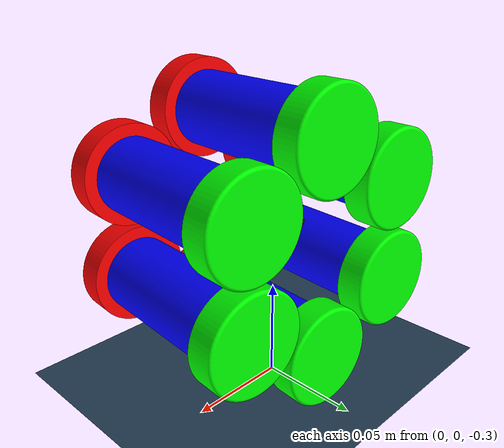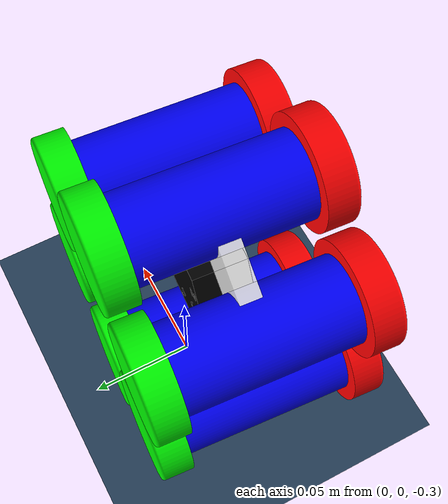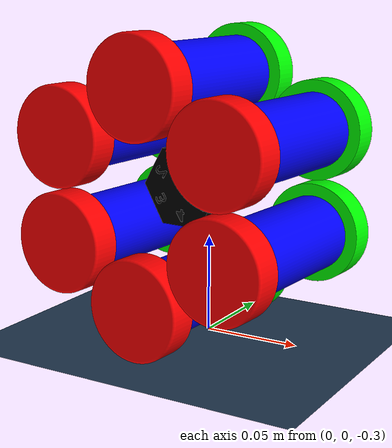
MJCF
<mujoco model="scene">
    <option timestep="0.001" solver="Newton" iterations="100" tolerance="1e-10"/>

    <include file="robot.xml" />

    <visual>
        <headlight diffuse="0.6 0.6 0.6" ambient="0.3 0.3 0.3" specular="0 0 0" />
        <rgba haze="0.15 0.25 0.35 1" />
        <global azimuth="160" elevation="-20" />
    </visual>

    <asset>
        <texture type="skybox" builtin="gradient" rgb1="0.3 0.5 0.7" rgb2="0 0 0" width="512"
            height="3072" />
        <texture type="2d" name="groundplane" builtin="checker" mark="edge" rgb1="0.2 0.3 0.4"
            rgb2="0.1 0.2 0.3"
            markrgb="0.8 0.8 0.8" width="300" height="300" />
        <material name="groundplane" texture="groundplane" texuniform="true" texrepeat="5 5"
            reflectance="0.2" />
    </asset>

    <worldbody>
        <light pos="0 0 3.5" dir="0 0 -0.3" directional="true" />
        <geom name="floor" size="0 0 0.05" pos="0 0 -0.3" type="plane" material="groundplane"/>
        <camera name="track_cam" mode="trackcom" target="control" pos="0 -2 1" />
    </worldbody>

</mujoco>

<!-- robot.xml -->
<!-- Generated using onshape-to-robot -->
<!-- Onshape https://cad.onshape.com/documents/1211bac3cb73c606e0df4462/w/b4b802ed1facbeb12b844dd4/e/452889f0b3bd3a04c0a0f503 -->
<mujoco model="roller">
  <compiler angle="radian" meshdir="assets" autolimits="true"/>
  <default>
    <default class="roller">
      <joint frictionloss="0.01" armature="0.005"/>
      <default class="visual">
        <geom type="mesh" contype="0" conaffinity="0" group="2"/>
      </default>
      <default class="collision">
        <geom group="3"/>
      </default>
    </default>
  </default>
  <worldbody>
    <!-- Link control -->
    <body name="control" pos="0 0 -0.22" euler="0 0.0 1.5" childclass="roller">
      <freejoint name="control_freejoint"/>
      <inertial pos="-0.0127 -5.50107e-05 -5.66234e-05" mass="0.091974" fullinertia="0.000228369 0.00011488 0.00011488 -6.9492e-21 1.08115e-39 -9.85277e-37"/>

            <site group="3" name="control" pos="0 0 0" quat="1 0 0 0"/>

      <!-- Part control -->
      <geom type="mesh" class="visual" pos="-0.0127 -5.50107e-05 -5.66234e-05" quat="1 0 0 0" mesh="control" material="control_material"/>
      <geom type="mesh" class="collision" pos="-0.0127 -5.50107e-05 -5.66234e-05" quat="1 0 0 0" mesh="control" material="control_material"/>
      <!-- Part suspension_joint -->
      <geom type="mesh" class="visual" pos="-0.0127 -5.50107e-05 -5.66234e-05" quat="1 -0 1.11022e-16 -0" mesh="suspension_joint" material="suspension_joint_material"/>
      <geom type="mesh" class="collision" pos="-0.0127 -5.50107e-05 -5.66234e-05" quat="1 -0 1.11022e-16 -0" mesh="suspension_joint" material="suspension_joint_material"/>
      <!-- Link center -->
      <body name="center" pos="-0.0127 -5.50107e-05 0.0527434" quat="0.5 0.5 0.5 0.5">
        <!-- Joint from control to center -->
        <!-- Joint is "fixed", skipping it -->
        <inertial pos="1.04779e-18 0 2.50049e-50" mass="0.10645" fullinertia="6.13698e-05 6.13698e-05 1.97233e-05 0 -5.13333e-37 0"/>
        <!-- Part center -->
        <geom type="mesh" class="visual" pos="3.07642e-18 -0.0528 0" quat="0.5 -0.5 -0.5 -0.5" mesh="center" material="center_material"/>
        <geom type="mesh" class="collision" pos="3.07642e-18 -0.0528 0" quat="0.5 -0.5 -0.5 -0.5" mesh="center" material="center_material"/>
        <!-- Frame roller1 -->
        <site group="3" name="roller1" pos="6.54587e-18 0 0" quat="0.5 -0.5 -0.5 -0.5"/>
        <!-- Link l_wheel -->
        <body name="l_wheel" pos="7.45389e-19 0 -0.0381" quat="0.707107 0 1.11022e-16 0.707107">
          <!-- Joint from center to l_wheel -->
          <joint axis="0 0 1" name="L1" type="hinge"/>
          <inertial pos="6.6074e-18 0 -0.00723207" mass="0.0823695" fullinertia="1.46894e-05 1.46894e-05 2.65054e-05 0 0 1.23917e-53"/>
          <!-- Part l_wheel -->
          <geom type="mesh" class="visual" pos="6.93889e-18 -0.0528 0.0381" quat="0.5 -0.5 -0.5 -0.5" mesh="l_wheel" material="l_wheel_material"/>
          <geom type="mesh" class="collision" pos="6.93889e-18 -0.0528 0.0381" quat="0.5 -0.5 -0.5 -0.5" mesh="l_wheel" material="l_wheel_material"/>
        </body>
        <!-- Link r_wheel -->
        <body name="r_wheel" pos="1.34848e-18 0 0.0381" quat="1 -0 -0 0">
          <!-- Joint from center to r_wheel -->
          <joint axis="0 0 1" name="R1" type="hinge"/>
          <inertial pos="0 -5.17685e-18 0.00723207" mass="0.0823695" fullinertia="1.46894e-05 1.46894e-05 2.65054e-05 2.05252e-37 7.23523e-22 7.23523e-22"/>
          <!-- Part r_wheel -->
          <geom type="mesh" class="visual" pos="0.0528 -1.38778e-17 -0.0381" quat="0.707107 -6.49467e-17 -0.707107 5.48114e-17" mesh="r_wheel" material="r_wheel_material"/>
          <geom type="mesh" class="collision" pos="0.0528 -1.38778e-17 -0.0381" quat="0.707107 -6.49467e-17 -0.707107 5.48114e-17" mesh="r_wheel" material="r_wheel_material"/>
        </body>
      </body>
      <!-- Link center_2 -->
      <body name="center_2" pos="-0.0127 0.0456711 0.0263434" quat="0.5 0.5 0.5 0.5">
        <!-- Joint from control to center_2 -->
        <!-- Joint is "fixed", skipping it -->
        <inertial pos="0 0 3.84346e-34" mass="0.10645" fullinertia="6.13698e-05 6.13698e-05 1.97233e-05 0 1.4377e-37 2.23364e-37"/>
        <!-- Part center_2 -->
        <geom type="mesh" class="visual" pos="-0.0457261 -0.0264 0" quat="0.183013 -0.683013 -0.183013 -0.683013" mesh="center" material="center_material"/>
        <geom type="mesh" class="collision" pos="-0.0457261 -0.0264 0" quat="0.183013 -0.683013 -0.183013 -0.683013" mesh="center" material="center_material"/>
        <!-- Frame roller6 -->
        <site group="3" name="roller6" pos="0 -6.93889e-18 0" quat="0.183013 -0.683013 -0.183013 -0.683013"/>
        <!-- Link l_wheel_2 -->
        <body name="l_wheel_2" pos="6.93889e-18 6.93889e-18 -0.0381" quat="0.707107 0 1.11022e-16 0.707107">
          <!-- Joint from center_2 to l_wheel_2 -->
          <joint axis="0 0 1" name="L2" type="hinge"/>
          <inertial pos="-3.31489e-19 0 -0.00723207" mass="0.0823695" fullinertia="1.46894e-05 1.46894e-05 2.65054e-05 0 0 1.23917e-53"/>
          <!-- Part l_wheel_2 -->
          <geom type="mesh" class="visual" pos="0 -0.0528 0.0381" quat="0.5 -0.5 -0.5 -0.5" mesh="l_wheel" material="l_wheel_material"/>
          <geom type="mesh" class="collision" pos="0 -0.0528 0.0381" quat="0.5 -0.5 -0.5 -0.5" mesh="l_wheel" material="l_wheel_material"/>
        </body>
        <!-- Link r_wheel_2 -->
        <body name="r_wheel_2" pos="-6.93889e-18 -3.46945e-18 0.0381" quat="0.866025 0 -2.22045e-16 -0.5">
          <!-- Joint from center_2 to r_wheel_2 -->
          <joint axis="0 0 1" name="R2" type="hinge"/>
          <inertial pos="1.38778e-17 1.38778e-17 0.00723207" mass="0.0823695" fullinertia="1.46894e-05 1.46894e-05 2.65054e-05 -1.71391e-21 -2.64828e-22 9.8835e-22"/>
          <!-- Part r_wheel_2 -->
          <geom type="mesh" class="visual" pos="0.0264 0.0457261 -0.0381" quat="0.612372 0.353553 -0.612372 0.353553" mesh="r_wheel" material="r_wheel_material"/>
          <geom type="mesh" class="collision" pos="0.0264 0.0457261 -0.0381" quat="0.612372 0.353553 -0.612372 0.353553" mesh="r_wheel" material="r_wheel_material"/>
        </body>
      </body>
      <!-- Link center_3 -->
      <body name="center_3" pos="-0.0127 0.0456711 -0.0264566" quat="0.183013 0.683013 -0.183013 -0.683013">
        <!-- Joint from control to center_3 -->
        <!-- Joint is "fixed", skipping it -->
        <inertial pos="-1.86454e-18 0 1.46432e-33" mass="0.10645" fullinertia="6.13698e-05 6.13698e-05 1.97233e-05 -3.40671e-21 3.09986e-37 -1.51966e-36"/>
        <!-- Part center_3 -->
        <geom type="mesh" class="visual" pos="-2.71051e-18 0.0528 0" quat="0.5 0.5 0.5 -0.5" mesh="center" material="center_material"/>
        <geom type="mesh" class="collision" pos="-2.71051e-18 0.0528 0" quat="0.5 0.5 0.5 -0.5" mesh="center" material="center_material"/>
        <!-- Frame roller5 -->
        <site group="3" name="roller5" pos="-6.49166e-18 1.66533e-16 5.20417e-18" quat="0.5 0.5 0.5 -0.5"/>
        <!-- Link l_wheel_3 -->
        <body name="l_wheel_3" pos="-9.02598e-18 1.66533e-16 0.0381" quat="7.48244e-17 -0.258819 -0.965926 2.14577e-16">
          <!-- Joint from center_3 to l_wheel_3 -->
          <joint axis="0 0 1" name="L3" type="hinge"/>
          <inertial pos="3.13796e-18 6.93889e-18 -0.00723207" mass="0.0823695" fullinertia="1.46894e-05 1.46894e-05 2.65054e-05 0 0 -1.57949e-53"/>
          <!-- Part l_wheel_3 -->
          <geom type="mesh" class="visual" pos="3.46945e-18 -0.0528 0.0381" quat="0.5 -0.5 -0.5 -0.5" mesh="l_wheel" material="l_wheel_material"/>
          <geom type="mesh" class="collision" pos="3.46945e-18 -0.0528 0.0381" quat="0.5 -0.5 -0.5 -0.5" mesh="l_wheel" material="l_wheel_material"/>
        </body>
        <!-- Link r_wheel_3 -->
        <body name="r_wheel_3" pos="-2.15485e-18 -6.93889e-18 -0.0381" quat="0 1 0 0">
          <!-- Joint from center_3 to r_wheel_3 -->
          <joint axis="0 0 1" name="R3" type="hinge"/>
          <inertial pos="0 -1.59595e-16 0.00723207" mass="0.0823695" fullinertia="1.46894e-05 1.46894e-05 2.65054e-05 4.95615e-22 -7.91975e-21 -3.73702e-21"/>
          <!-- Part r_wheel_3 -->
          <geom type="mesh" class="visual" pos="-0.0264 0.0457261 -0.0381" quat="0.353553 0.612372 -0.353553 0.612372" mesh="r_wheel" material="r_wheel_material"/>
          <geom type="mesh" class="collision" pos="-0.0264 0.0457261 -0.0381" quat="0.353553 0.612372 -0.353553 0.612372" mesh="r_wheel" material="r_wheel_material"/>
        </body>
      </body>
      <!-- Link center_4 -->
      <body name="center_4" pos="-0.0127 -5.50107e-05 -0.0528566" quat="0.5 0.5 -0.5 -0.5">
        <!-- Joint from control to center_4 -->
        <!-- Joint is "fixed", skipping it -->
        <inertial pos="-2.93913e-19 0 2.24821e-99" mass="0.10645" fullinertia="6.13698e-05 6.13698e-05 1.97233e-05 0 -8.98706e-86 0"/>
        <!-- Part center_4 -->
        <geom type="mesh" class="visual" pos="1.73472e-18 0.0528 0" quat="0.5 0.5 0.5 -0.5" mesh="center" material="center_material"/>
        <geom type="mesh" class="collision" pos="1.73472e-18 0.0528 0" quat="0.5 0.5 0.5 -0.5" mesh="center" material="center_material"/>
        <!-- Frame roller4 -->
        <site group="3" name="roller4" pos="0 0 0" quat="0.5 0.5 0.5 -0.5"/>
        <!-- Link l_wheel_4 -->
        <body name="l_wheel_4" pos="4.0251e-18 0 0.0381" quat="4.32978e-17 -0.707107 -0.707107 -4.35788e-33">
          <!-- Joint from center_4 to l_wheel_4 -->
          <joint axis="0 0 1" name="L4" type="hinge"/>
          <inertial pos="6.6074e-18 0 -0.00723207" mass="0.0823695" fullinertia="1.46894e-05 1.46894e-05 2.65054e-05 0 0 1.23917e-53"/>
          <!-- Part l_wheel_4 -->
          <geom type="mesh" class="visual" pos="6.93889e-18 -0.0528 0.0381" quat="0.5 -0.5 -0.5 -0.5" mesh="l_wheel" material="l_wheel_material"/>
          <geom type="mesh" class="collision" pos="6.93889e-18 -0.0528 0.0381" quat="0.5 -0.5 -0.5 -0.5" mesh="l_wheel" material="l_wheel_material"/>
        </body>
        <!-- Link r_wheel_4 -->
        <body name="r_wheel_4" pos="-6.77626e-21 0 -0.0381" quat="0 1 0 0">
          <!-- Joint from center_4 to r_wheel_4 -->
          <joint axis="0 0 1" name="R4" type="hinge"/>
          <inertial pos="-7.80626e-18 -6.93889e-18 0.00723207" mass="0.0823695" fullinertia="1.46894e-05 1.46894e-05 2.65054e-05 2.36207e-22 -7.23523e-22 -7.23523e-22"/>
          <!-- Part r_wheel_4 -->
          <geom type="mesh" class="visual" pos="0.005362 -0.052527 -0.0381" quat="0.524774 -0.473932 -0.524774 -0.473932" mesh="r_wheel" material="r_wheel_material"/>
          <geom type="mesh" class="collision" pos="0.005362 -0.052527 -0.0381" quat="0.524774 -0.473932 -0.524774 -0.473932" mesh="r_wheel" material="r_wheel_material"/>
        </body>
      </body>
      <!-- Link center_5 -->
      <body name="center_5" pos="-0.0127 -0.0457812 -0.0264566" quat="0.683013 0.183013 -0.683013 -0.183013">
        <!-- Joint from control to center_5 -->
        <!-- Joint is "fixed", skipping it -->
        <inertial pos="-1.45222e-18 6.93889e-18 -3.25405e-34" mass="0.10645" fullinertia="6.13698e-05 6.13698e-05 1.97233e-05 1.82565e-21 1.21009e-36 -1.07996e-37"/>
        <!-- Part center_5 -->
        <geom type="mesh" class="visual" pos="4.29276e-18 0.0528 0" quat="0.5 0.5 0.5 -0.5" mesh="center" material="center_material"/>
        <geom type="mesh" class="collision" pos="4.29276e-18 0.0528 0" quat="0.5 0.5 0.5 -0.5" mesh="center" material="center_material"/>
        <!-- Frame roller3 -->
        <site group="3" name="roller3" pos="2.968e-18 -6.93889e-18 1.21431e-17" quat="0.5 0.5 0.5 -0.5"/>
        <!-- Link l_wheel_5 -->
        <body name="l_wheel_5" pos="-3.72694e-20 -1.38778e-17 0.0381" quat="3.69812e-17 -0.965926 -0.258819 9.01064e-18">
          <!-- Joint from center_5 to l_wheel_5 -->
          <joint axis="0 0 1" name="L5" type="hinge"/>
          <inertial pos="6.6074e-18 0 -0.00723207" mass="0.0823695" fullinertia="1.46894e-05 1.46894e-05 2.65054e-05 6.39259e-38 1.14871e-37 1.08044e-53"/>
          <!-- Part l_wheel_5 -->
          <geom type="mesh" class="visual" pos="6.93889e-18 -0.0528 0.0381" quat="0.5 -0.5 -0.5 -0.5" mesh="l_wheel" material="l_wheel_material"/>
          <geom type="mesh" class="collision" pos="6.93889e-18 -0.0528 0.0381" quat="0.5 -0.5 -0.5 -0.5" mesh="l_wheel" material="l_wheel_material"/>
        </body>
        <!-- Link r_wheel_5 -->
        <body name="r_wheel_5" pos="-5.01444e-19 6.93889e-18 -0.0381" quat="0 1 0 0">
          <!-- Joint from center_5 to r_wheel_5 -->
          <joint axis="0 0 1" name="R5" type="hinge"/>
          <inertial pos="-1.04083e-17 0 0.00723207" mass="0.0823695" fullinertia="1.46894e-05 1.46894e-05 2.65054e-05 6.18881e-22 -2.32831e-21 -1.00533e-20"/>
          <!-- Part r_wheel_5 -->
          <geom type="mesh" class="visual" pos="-0.0264 -0.0457261 -0.0381" quat="0.353553 -0.612372 -0.353553 -0.612372" mesh="r_wheel" material="r_wheel_material"/>
          <geom type="mesh" class="collision" pos="-0.0264 -0.0457261 -0.0381" quat="0.353553 -0.612372 -0.353553 -0.612372" mesh="r_wheel" material="r_wheel_material"/>
        </body>
      </body>
      <!-- Link center_6 -->
      <body name="center_6" pos="-0.0127 -0.0457812 0.0263434" quat="0.683013 -0.183013 -0.683013 0.183013">
        <!-- Joint from control to center_6 -->
        <!-- Joint is "fixed", skipping it -->
        <inertial pos="-1.76853e-18 0 1.22027e-34" mass="0.10645" fullinertia="6.13698e-05 6.13698e-05 1.97233e-05 -4.77595e-21 -1.03432e-36 3.44383e-37"/>
        <!-- Part center_6 -->
        <geom type="mesh" class="visual" pos="-3.84892e-18 0.0528 0" quat="0.5 0.5 0.5 -0.5" mesh="center" material="center_material"/>
        <geom type="mesh" class="collision" pos="-3.84892e-18 0.0528 0" quat="0.5 0.5 0.5 -0.5" mesh="center" material="center_material"/>
        <!-- Frame roller2 -->
        <site group="3" name="roller2" pos="-1.0327e-17 -2.77556e-17 6.93889e-18" quat="0.5 0.5 0.5 -0.5"/>
        <!-- Link l_wheel_6 -->
        <body name="l_wheel_6" pos="-1.24006e-17 -3.46945e-17 0.0381" quat="7.97124e-17 -0.965926 0.258819 -1.29114e-16">
          <!-- Joint from center_6 to l_wheel_6 -->
          <joint axis="0 0 1" name="L6" type="hinge"/>
          <inertial pos="3.13796e-18 -6.93889e-18 -0.00723207" mass="0.0823695" fullinertia="1.46894e-05 1.46894e-05 2.65054e-05 0 0 -2.53882e-37"/>
          <!-- Part l_wheel_6 -->
          <geom type="mesh" class="visual" pos="3.46945e-18 -0.0528 0.0381" quat="0.5 -0.5 -0.5 -0.5" mesh="l_wheel" material="l_wheel_material"/>
          <geom type="mesh" class="collision" pos="3.46945e-18 -0.0528 0.0381" quat="0.5 -0.5 -0.5 -0.5" mesh="l_wheel" material="l_wheel_material"/>
        </body>
        <!-- Link r_wheel_6 -->
        <body name="r_wheel_6" pos="8.13152e-20 0 -0.0381" quat="0 1 0 0">
          <!-- Joint from center_6 to r_wheel_6 -->
          <joint axis="0 0 1" name="R6" type="hinge"/>
          <inertial pos="-1.38778e-17 3.46945e-17 0.00723207" mass="0.0823695" fullinertia="1.46894e-05 1.46894e-05 2.65054e-05 -2.41107e-21 -3.70584e-21 -5.81265e-21"/>
          <!-- Part r_wheel_6 -->
          <geom type="mesh" class="visual" pos="0.0264 -0.0457261 -0.0381" quat="0.612372 -0.353553 -0.612372 -0.353553" mesh="r_wheel" material="r_wheel_material"/>
          <geom type="mesh" class="collision" pos="0.0264 -0.0457261 -0.0381" quat="0.612372 -0.353553 -0.612372 -0.353553" mesh="r_wheel" material="r_wheel_material"/>
        </body>
      </body>
    </body>
  </worldbody>
  <asset>
    <mesh file="suspension_joint.stl"/>
    <mesh file="control.stl"/>
    <mesh file="r_wheel.stl"/>
    <mesh file="center.stl"/>
    <mesh file="l_wheel.stl"/>
    <material name="control_material" rgba="0 0 0 1"/>
    <material name="suspension_joint_material" rgba="1 1 1 0.898039"/>
    <material name="center_material" rgba="0 0 1 1"/>
    <material name="l_wheel_material" rgba="1 0 0 1"/>
    <material name="r_wheel_material" rgba="0 1 0 1"/>
  </asset>
     <actuator>
        <intvelocity class="roller" name="L1" joint="L1" kp="1" kv="0.2" actrange="-1000 1000" forcerange="-5 5"/>
        <intvelocity class="roller" name="R1" joint="R1" kp="1" kv="0.2" actrange="-1000 1000" forcerange="-5 5"/>
        <intvelocity class="roller" name="L2" joint="L2" kp="1" kv="0.2" actrange="-1000 1000" forcerange="-5 5"/>
        <intvelocity class="roller" name="R2" joint="R2" kp="1" kv="0.2" actrange="-1000 1000" forcerange="-5 5"/>
        <intvelocity class="roller" name="L3" joint="L3" kp="1" kv="0.2" actrange="-1000 1000" forcerange="-5 5"/>
        <intvelocity class="roller" name="R3" joint="R3" kp="1" kv="0.2" actrange="-1000 1000" forcerange="-5 5"/>
        <intvelocity class="roller" name="L4" joint="L4" kp="1" kv="0.2" actrange="-1000 1000" forcerange="-5 5"/>
        <intvelocity class="roller" name="R4" joint="R4" kp="1" kv="0.2" actrange="-1000 1000" forcerange="-5 5"/>
        <intvelocity class="roller" name="L5" joint="L5" kp="1" kv="0.2" actrange="-1000 1000" forcerange="-5 5"/>
        <intvelocity class="roller" name="R5" joint="R5" kp="1" kv="0.2" actrange="-1000 1000" forcerange="-5 5"/>
        <intvelocity class="roller" name="L6" joint="L6" kp="1" kv="0.2" actrange="-1000 1000" forcerange="-5 5"/>
        <intvelocity class="roller" name="R6" joint="R6" kp="1" kv="0.2" actrange="-1000 1000" forcerange="-5 5"/>
    </actuator>
  <sensor>
    <accelerometer name="roller1_accel" site="roller1"/>
    <accelerometer name="roller2_accel" site="roller2"/>
    <accelerometer name="roller3_accel" site="roller3"/>
    <accelerometer name="roller4_accel" site="roller4"/>
    <accelerometer name="roller5_accel" site="roller5"/>
    <accelerometer name="roller6_accel" site="roller6"/>

    <velocimeter name="roller1_gyro" site="roller1"/>
    <velocimeter name="roller2_gyro" site="roller2"/>
    <velocimeter name="roller3_gyro" site="roller3"/>
    <velocimeter name="roller4_gyro" site="roller4"/>
    <velocimeter name="roller5_gyro" site="roller5"/>
    <velocimeter name="roller6_gyro" site="roller6"/>

    <jointvel name="L1_w" joint="L1"/>
    <jointvel name="R1_w" joint="R1"/>
    <jointvel name="L2_w" joint="L2"/>
    <jointvel name="R2_w" joint="R2"/>
    <jointvel name="L3_w" joint="L3"/>
    <jointvel name="R3_w" joint="R3"/>
    <jointvel name="L4_w" joint="L4"/>
    <jointvel name="R4_w" joint="R4"/>
    <jointvel name="L5_w" joint="L5"/>
    <jointvel name="R5_w" joint="R5"/>
    <jointvel name="L6_w" joint="L6"/>
    <jointvel name="R6_w" joint="R6"/>

    <actuatorfrc name="L1_torque" actuator="L1"/>
    <actuatorfrc name="R1_torque" actuator="R1"/>
    <actuatorfrc name="L2_torque" actuator="L2"/>
    <actuatorfrc name="R2_torque" actuator="R2"/>
    <actuatorfrc name="L3_torque" actuator="L3"/>
    <actuatorfrc name="R3_torque" actuator="R3"/>
    <actuatorfrc name="L4_torque" actuator="L4"/>
    <actuatorfrc name="R4_torque" actuator="R4"/>
    <actuatorfrc name="L5_torque" actuator="L5"/>
    <actuatorfrc name="R5_torque" actuator="R5"/>
    <actuatorfrc name="L6_torque" actuator="L6"/>
    <actuatorfrc name="R6_torque" actuator="R6"/>

    <velocimeter name="total_vel" site="control"/>
    <gyro name="total_ang" site="control"/>
    <accelerometer name="total_grav" site="control"/>
  </sensor> </mujoco>
